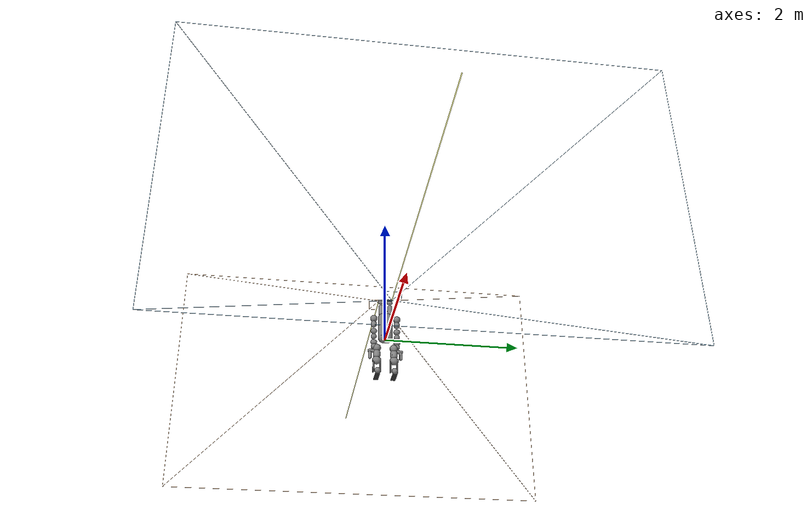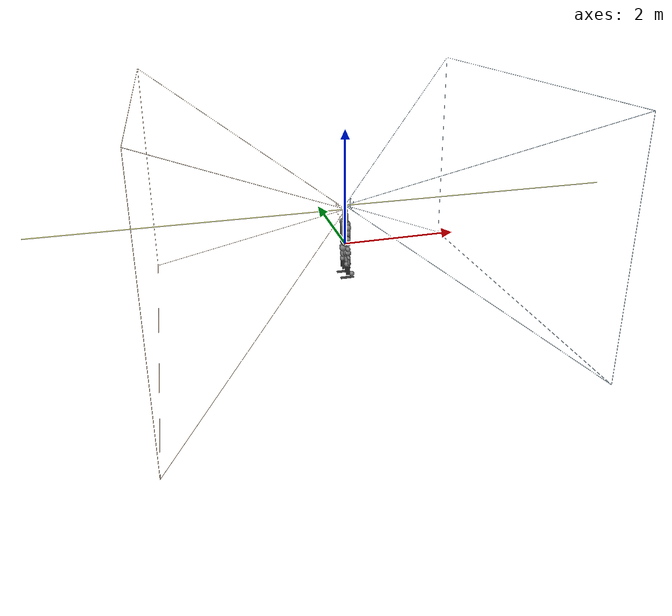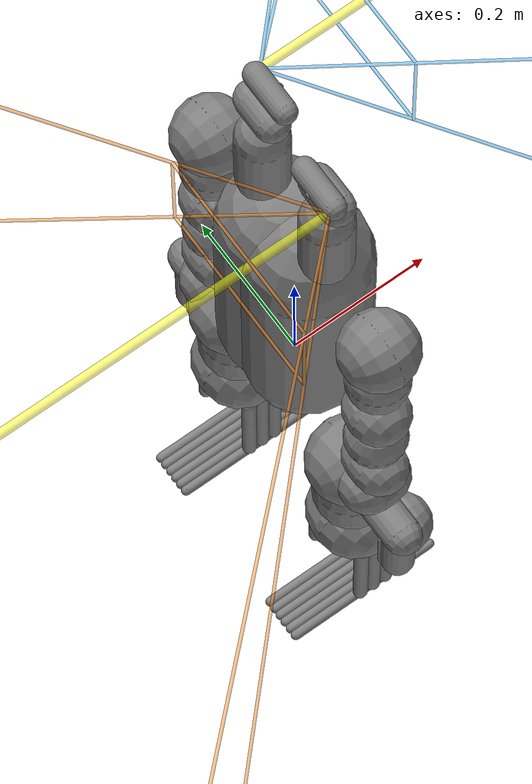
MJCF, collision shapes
<mujoco model="humanoid_v2">
  <compiler angle="radian" meshdir="../../../../asset/create/meshes" />

  <default>
    <default class="humanoid_v2">
      <default class="visual">
        <geom type="mesh" contype="0" conaffinity="0" group="2" material="silver" />
      </default>
      <default class="collision">
        <geom group="3" />
      </default>
    </default>
    <default class="L_main">
      <default class="L_parallel_gripper">
        <default class="L_visual">
          <geom type="mesh" contype="0" conaffinity="0" group="2" material="silver" />
        </default>
        <default class="L_collision">
          <geom group="3" />
        </default>
      </default>
    </default>
    <default class="R_main">
      <default class="R_parallel_gripper">
        <default class="R_visual">
          <geom type="mesh" contype="0" conaffinity="0" group="2" material="silver" />
        </default>
        <default class="R_collision">
          <geom group="3" />
        </default>
      </default>
    </default>
    <default class="cam_main">
      <default class="cam_head_camera_dual">
        <default class="cam_visual">
          <geom type="mesh" contype="0" conaffinity="0" group="2" material="silver" />
        </default>
        <default class="cam_collision">
          <geom group="3" />
        </default>
      </default>
    </default>
  </default>

  <asset>
    <texture type="2d" colorspace="linear" name="L_tag_80_tex" file="../../../../asset/duke_v2/parallel_gripper/meshes/tags/tag_80.png" />
    <texture type="2d" colorspace="linear" name="L_tag_81_tex" file="../../../../asset/duke_v2/parallel_gripper/meshes/tags/tag_81.png" />
    <texture type="2d" colorspace="linear" name="L_tag_82_tex" file="../../../../asset/duke_v2/parallel_gripper/meshes/tags/tag_82.png" />
    <texture type="2d" colorspace="linear" name="L_tag_83_tex" file="../../../../asset/duke_v2/parallel_gripper/meshes/tags/tag_83.png" />
    <texture type="2d" colorspace="linear" name="L_tag_84_tex" file="../../../../asset/duke_v2/parallel_gripper/meshes/tags/tag_84.png" />
    <texture type="2d" colorspace="linear" name="L_tag_85_tex" file="../../../../asset/duke_v2/parallel_gripper/meshes/tags/tag_85.png" />
    <texture type="2d" colorspace="linear" name="L_tag_86_tex" file="../../../../asset/duke_v2/parallel_gripper/meshes/tags/tag_86.png" />
    <texture type="2d" colorspace="linear" name="L_tag_87_tex" file="../../../../asset/duke_v2/parallel_gripper/meshes/tags/tag_87.png" />
    <texture type="2d" colorspace="linear" name="R_tag_90_tex" file="../../../../asset/duke_v2/parallel_gripper/meshes/tags/tag_90.png" />
    <texture type="2d" colorspace="linear" name="R_tag_91_tex" file="../../../../asset/duke_v2/parallel_gripper/meshes/tags/tag_91.png" />
    <texture type="2d" colorspace="linear" name="R_tag_92_tex" file="../../../../asset/duke_v2/parallel_gripper/meshes/tags/tag_92.png" />
    <texture type="2d" colorspace="linear" name="R_tag_93_tex" file="../../../../asset/duke_v2/parallel_gripper/meshes/tags/tag_93.png" />
    <texture type="2d" colorspace="linear" name="R_tag_94_tex" file="../../../../asset/duke_v2/parallel_gripper/meshes/tags/tag_94.png" />
    <texture type="2d" colorspace="linear" name="R_tag_95_tex" file="../../../../asset/duke_v2/parallel_gripper/meshes/tags/tag_95.png" />
    <texture type="2d" colorspace="linear" name="R_tag_96_tex" file="../../../../asset/duke_v2/parallel_gripper/meshes/tags/tag_96.png" />
    <texture type="2d" colorspace="linear" name="R_tag_97_tex" file="../../../../asset/duke_v2/parallel_gripper/meshes/tags/tag_97.png" />
    <material name="silver" rgba="0.75 0.75 0.75 1" />
    <material name="blue" rgba="0 0 0.8 1" />
    <material name="black" rgba="0 0 0 1" />
    <material name="purple" rgba="0.8 0 0.8 1" />
    <material name="light_grey" rgba="0.4 0.4 0.4 1" />
    <material name="dark_grey" rgba="0.3 0.3 0.3 1" />
    <material name="white" />
    <material name="L_silver" rgba="0.75 0.75 0.75 1" />
    <material name="L_base_mat" rgba="0.75 0.75 0.75 1" />
    <material name="L_left_rack_mat" rgba="0.3 0.55 0.85 1" />
    <material name="L_right_rack_mat" rgba="0.65 0.4 0.8 1" />
    <material name="L_tag_80_mat" texture="L_tag_80_tex" specular="0" shininess="0" />
    <material name="L_tag_81_mat" texture="L_tag_81_tex" specular="0" shininess="0" />
    <material name="L_tag_82_mat" texture="L_tag_82_tex" specular="0" shininess="0" />
    <material name="L_tag_83_mat" texture="L_tag_83_tex" specular="0" shininess="0" />
    <material name="L_tag_84_mat" texture="L_tag_84_tex" specular="0" shininess="0" />
    <material name="L_tag_85_mat" texture="L_tag_85_tex" specular="0" shininess="0" />
    <material name="L_tag_86_mat" texture="L_tag_86_tex" specular="0" shininess="0" />
    <material name="L_tag_87_mat" texture="L_tag_87_tex" specular="0" shininess="0" />
    <material name="R_silver" rgba="0.75 0.75 0.75 1" />
    <material name="R_base_mat" rgba="0.75 0.75 0.75 1" />
    <material name="R_left_rack_mat" rgba="0.3 0.55 0.85 1" />
    <material name="R_right_rack_mat" rgba="0.65 0.4 0.8 1" />
    <material name="R_tag_90_mat" texture="R_tag_90_tex" specular="0" shininess="0" />
    <material name="R_tag_91_mat" texture="R_tag_91_tex" specular="0" shininess="0" />
    <material name="R_tag_92_mat" texture="R_tag_92_tex" specular="0" shininess="0" />
    <material name="R_tag_93_mat" texture="R_tag_93_tex" specular="0" shininess="0" />
    <material name="R_tag_94_mat" texture="R_tag_94_tex" specular="0" shininess="0" />
    <material name="R_tag_95_mat" texture="R_tag_95_tex" specular="0" shininess="0" />
    <material name="R_tag_96_mat" texture="R_tag_96_tex" specular="0" shininess="0" />
    <material name="R_tag_97_mat" texture="R_tag_97_tex" specular="0" shininess="0" />
    <material name="cam_silver" rgba="0.75 0.75 0.75 1" />
    <material name="cam_blue" rgba="0 0 0.8 1" />
    <material name="cam_black" rgba="0 0 0 1" />
    <material name="cam_purple" rgba="0.8 0 0.8 1" />
    <material name="cam_light_grey" rgba="0.4 0.4 0.4 1" />
    <material name="cam_dark_grey" rgba="0.3 0.3 0.3 1" />
    <material name="cam_white" />
    <mesh name="base_link" content_type="model/stl" file="base_link.stl" scale="0.001 0.001 0.001" />
    <mesh name="waist_high_res" content_type="model/obj" file="waist.obj" scale="0.001 0.001 0.001" />
    <mesh name="hip_2_high_res" content_type="model/obj" file="hip_2.obj" scale="0.001 0.001 0.001" />
    <mesh name="hip_3_high_res" content_type="model/obj" file="hip_3.obj" scale="0.001 0.001 0.001" />
    <mesh name="knee_high_res" content_type="model/obj" file="knee.obj" scale="0.001 0.001 0.001" />
    <mesh name="shank_high_res" content_type="model/obj" file="shank.obj" scale="0.001 0.001 0.001" />
    <mesh name="ankle_1_high_res" content_type="model/obj" file="ankle_1.obj" scale="0.001 0.001 0.001" />
    <mesh name="ankle_2_high_res" content_type="model/obj" file="ankle_2.obj" scale="0.001 0.001 0.001" />
    <mesh name="shoulder_2_high_res" content_type="model/obj" file="shoulder_2.obj" scale="0.001 0.001 0.001" />
    <mesh name="shoulder_3" content_type="model/obj" file="shoulder_3.obj" scale="0.001 0.001 0.001" />
    <mesh name="elbow_high_res" content_type="model/obj" file="elbow.obj" scale="0.001 0.001 0.001" />
    <mesh name="wrist_1_high_res_mirrorx" content_type="model/obj" file="wrist_1.obj" scale="-0.001 0.001 0.001" />
    <mesh name="wrist_1_high_res" content_type="model/obj" file="wrist_1.obj" scale="0.001 0.001 0.001" />
    <mesh name="wrist_2_high_res" content_type="model/obj" file="wrist_2.obj" scale="0.001 0.001 0.001" />
    <mesh name="wrist_3_new_high_res_mirrorx" content_type="model/obj" file="wrist_3_new.obj" scale="-0.001 0.001 0.001" />
    <mesh name="wrist_3_new_high_res" content_type="model/obj" file="wrist_3_new.obj" scale="0.001 0.001 0.001" />
    <mesh name="end_effector_attachment_new_high_res" content_type="model/obj" file="end_effector_attachment_new.obj" scale="0.001 0.001 0.001" />
    <mesh name="L_base" content_type="model/obj" file="../../duke_v2/parallel_gripper/meshes/base.obj" scale="0.001 0.001 0.001" />
    <mesh name="L_left_rack" content_type="model/obj" file="../../duke_v2/parallel_gripper/meshes/left_rack.obj" scale="0.001 0.001 0.001" />
    <mesh name="L_right_rack" content_type="model/obj" file="../../duke_v2/parallel_gripper/meshes/right_rack.obj" scale="0.001 0.001 0.001" />
    <mesh name="L_tag_80_quad" content_type="model/obj" file="../../duke_v2/parallel_gripper/meshes/tags/tag_80.obj" inertia="shell" scale="0.001 0.001 0.001" />
    <mesh name="L_tag_81_quad" content_type="model/obj" file="../../duke_v2/parallel_gripper/meshes/tags/tag_81.obj" inertia="shell" scale="0.001 0.001 0.001" />
    <mesh name="L_tag_82_quad" content_type="model/obj" file="../../duke_v2/parallel_gripper/meshes/tags/tag_82.obj" inertia="shell" scale="0.001 0.001 0.001" />
    <mesh name="L_tag_83_quad" content_type="model/obj" file="../../duke_v2/parallel_gripper/meshes/tags/tag_83.obj" inertia="shell" scale="0.001 0.001 0.001" />
    <mesh name="L_tag_84_quad" content_type="model/obj" file="../../duke_v2/parallel_gripper/meshes/tags/tag_84.obj" inertia="shell" scale="0.001 0.001 0.001" />
    <mesh name="L_tag_85_quad" content_type="model/obj" file="../../duke_v2/parallel_gripper/meshes/tags/tag_85.obj" inertia="shell" scale="0.001 0.001 0.001" />
    <mesh name="L_tag_86_quad" content_type="model/obj" file="../../duke_v2/parallel_gripper/meshes/tags/tag_86.obj" inertia="shell" scale="0.001 0.001 0.001" />
    <mesh name="L_tag_87_quad" content_type="model/obj" file="../../duke_v2/parallel_gripper/meshes/tags/tag_87.obj" inertia="shell" scale="0.001 0.001 0.001" />
    <mesh name="R_base" file="../../duke_v2/parallel_gripper/meshes/base.obj" scale="0.001 0.001 0.001" />
    <mesh name="R_left_rack" content_type="model/obj" file="../../duke_v2/parallel_gripper/meshes/left_rack.obj" scale="0.001 0.001 0.001" />
    <mesh name="R_right_rack" content_type="model/obj" file="../../duke_v2/parallel_gripper/meshes/right_rack.obj" scale="0.001 0.001 0.001" />
    <mesh name="R_tag_90_quad" content_type="model/obj" file="../../duke_v2/parallel_gripper/meshes/tags/tag_90.obj" inertia="shell" scale="0.001 0.001 0.001" />
    <mesh name="R_tag_91_quad" content_type="model/obj" file="../../duke_v2/parallel_gripper/meshes/tags/tag_91.obj" inertia="shell" scale="0.001 0.001 0.001" />
    <mesh name="R_tag_92_quad" content_type="model/obj" file="../../duke_v2/parallel_gripper/meshes/tags/tag_92.obj" inertia="shell" scale="0.001 0.001 0.001" />
    <mesh name="R_tag_93_quad" content_type="model/obj" file="../../duke_v2/parallel_gripper/meshes/tags/tag_93.obj" inertia="shell" scale="0.001 0.001 0.001" />
    <mesh name="R_tag_94_quad" content_type="model/obj" file="../../duke_v2/parallel_gripper/meshes/tags/tag_94.obj" inertia="shell" scale="0.001 0.001 0.001" />
    <mesh name="R_tag_95_quad" content_type="model/obj" file="../../duke_v2/parallel_gripper/meshes/tags/tag_95.obj" inertia="shell" scale="0.001 0.001 0.001" />
    <mesh name="R_tag_96_quad" content_type="model/obj" file="../../duke_v2/parallel_gripper/meshes/tags/tag_96.obj" inertia="shell" scale="0.001 0.001 0.001" />
    <mesh name="R_tag_97_quad" content_type="model/obj" file="../../duke_v2/parallel_gripper/meshes/tags/tag_97.obj" inertia="shell" scale="0.001 0.001 0.001" />
    <mesh name="cam_base_left" content_type="model/obj" file="../../duke_v2/head_cam/meshes/links/base_left.obj" scale="0.001 0.001 0.001" />
    <mesh name="cam_yaw_left" content_type="model/obj" file="../../duke_v2/head_cam/meshes/links/yaw_left.obj" scale="0.001 0.001 0.001" />
    <mesh name="cam_pitch_left" content_type="model/obj" file="../../duke_v2/head_cam/meshes/links/pitch_left.obj" scale="0.001 0.001 0.001" />
  </asset>

  <worldbody>
    <body name="base_link" childclass="humanoid_v2">
      <inertial pos="-0.00741636 4.16161e-05 0.186843" mass="9.30291" fullinertia="0.188902343 0.173948988 0.0349290694 -7.14043436e-06 -0.00480258537 4.92610916e-05" />
      <joint name="floating_base_joint" type="free" />
      <geom name="base_link_visual" class="visual" material="dark_grey" mesh="base_link" />
      <geom name="base_link_collision0" class="collision" size="0.0848538 0.155146" pos="0 -0.0249986 0.2" type="capsule" />
      <geom name="base_link_collision1" class="collision" size="0.0848538 0.155146" pos="0 0.0249986 0.2" type="capsule" />
      <site name="imu_site" pos="0 0 0" />
      <camera name="tracking" pos="1.5 -1.5 1" quat="0.780227 0.494771 0.204941 0.323181" mode="trackcom" />
      <light pos="0 0 2" dir="0 0 -1" mode="trackcom" />
      <body name="waist" pos="0 0 -0.0361">
        <inertial pos="-0.00238207 4.63475e-07 -0.0704721" mass="2.31937" fullinertia="0.00556380441 0.00376271051 0.00531598508 -9.54370724e-07 6.73797608e-05 6.72639247e-08" />
        <joint name="waist_joint" pos="0 0 0" axis="0 0 1" range="-1.5708 1.5708" frictionloss="0.2" />
        <geom name="waist_visual" class="visual" material="dark_grey" mesh="waist_high_res" />
        <body name="hip_2_L" pos="0 0.059946 -0.081628" quat="0.793353 0.608761 0 0">
          <inertial pos="0.000349087 -2.18694e-05 -0.061261" mass="1.2527" fullinertia="0.00184592008 0.00192887694 0.00139448298 -4.65310842e-07 7.53130928e-05 -3.41952255e-08" />
          <joint name="left_hip_1_joint" pos="0 0 0" axis="0 0 1" range="-1.8326 1.8326" frictionloss="0.2" />
          <geom name="hip_2_L_visual" class="visual" material="light_grey" mesh="hip_2_high_res" />
          <geom name="hip_2_L_collision" class="collision" size="0.06 0.005" pos="0.0006 0 -0.069" quat="0.701057 0.092296 -0.701057 -0.092296" type="capsule" />
          <body name="hip_3_L" pos="0.0287 0 -0.0691" quat="0.701057 0.092296 -0.701057 -0.092296">
            <inertial pos="2.07731e-05 -0.0770614 0.0307231" mass="1.29734" fullinertia="0.00271564981 0.00175400621 0.00229136398 -1.73200232e-07 2.51456817e-07 -4.24077402e-05" />
            <joint name="left_hip_2_joint" pos="0 0 0" axis="0 0 1" range="-1.8326 0.523599" frictionloss="0.5" />
            <geom name="hip_3_L_visual" class="visual" material="dark_grey" mesh="hip_3_high_res" />
            <geom name="hip_3_L_collision" class="collision" size="0.053 0.021" pos="0 -0.0945 0.0287" quat="0.707107 -0.707107 0 0" type="capsule" />
            <body name="knee_L" pos="0 -0.1156 0.0287" quat="0.707107 -0.707107 0 0">
              <inertial pos="0.0014826 8.41853e-05 -0.0736603" mass="1.84214" fullinertia="0.00341717719 0.00264701475 0.00191177806 -3.18944229e-06 6.43797512e-05 -3.96379965e-06" />
              <joint name="left_hip_3_joint" pos="0 0 0" axis="0 0 1" range="-1.5708 1.5708" frictionloss="0.2" />
              <geom name="knee_L_visual" class="visual" material="light_grey" mesh="knee_high_res" />
              <geom name="knee_L_collision" class="collision" size="0.06 0.005" pos="-0.00225 0 -0.0795" quat="0.5 -0.5 -0.5 0.5" type="capsule" />
              <body name="shank_L" pos="0.0255 0 -0.0795" quat="0.5 -0.5 -0.5 0.5">
                <inertial pos="8.59033e-07 0.0943751 0.0229906" mass="0.753289" fullinertia="0.00599117 0.00154572065 0.00486076935 -9.33663573e-08 -4.88217728e-10 -1.73350428e-05" />
                <joint name="left_knee_joint" pos="0 0 0" axis="0 0 1" range="-2.26893 2.26893" frictionloss="0.5" />
                <geom name="shank_L_visual" class="visual" material="dark_grey" mesh="shank_high_res" />
                <geom name="shank_L_collision0" class="collision" size="0.01 0.08" pos="-0.02 0.1 -0.025" quat="0.707107 -0.707107 0 0" type="capsule" />
                <geom name="shank_L_collision1" class="collision" size="0.01 0.08" pos="0 0.1 -0.025" quat="0.707107 -0.707107 0 0" type="capsule" />
                <geom name="shank_L_collision2" class="collision" size="0.01 0.08" pos="0.02 0.1 -0.025" quat="0.707107 -0.707107 0 0" type="capsule" />
                <geom name="shank_L_collision3" class="collision" size="0.01 0.08" pos="-0.02 0.1 0.075" quat="0.707107 -0.707107 0 0" type="capsule" />
                <geom name="shank_L_collision4" class="collision" size="0.01 0.08" pos="0 0.1 0.075" quat="0.707107 -0.707107 0 0" type="capsule" />
                <geom name="shank_L_collision5" class="collision" size="0.01 0.08" pos="0.02 0.1 0.075" quat="0.707107 -0.707107 0 0" type="capsule" />
                <body name="ankle_1_L" pos="0 0.195 0" quat="0 0 1 0">
                  <inertial pos="-0.0305888 -1.59279e-05 -0.025774" mass="1.80186" fullinertia="0.00144542199 0.00421361113 0.00443806688 6.81624234e-07 2.33372162e-06 -5.41208275e-07" />
                  <joint name="left_ankle_1_joint" pos="0 0 0" axis="0 0 1" range="-0.872665 0.872665" frictionloss="0.2" />
                  <geom name="ankle_1_L_visual" class="visual" material="light_grey" mesh="ankle_1_high_res" />
                  <geom name="ankle_1_L_collision" class="collision" size="0.044 0.0005" pos="-0.08275 0 -0.0255" quat="0.707107 0 0.707107 0" type="capsule" />
                  <body name="foot_L" pos="-0.1 0 -0.0255" quat="0.5 -0.5 0.5 -0.5">
                    <inertial pos="-0.0374774 8.96073e-10 0.0957522" mass="0.506071" fullinertia="0.00341516545 0.00361595 0.000615154548 0 0.00011486913 0" />
                    <joint name="left_ankle_2_joint" pos="0 0 0" axis="0 0 1" range="-1.0472 1.0472" frictionloss="0.5" />
                    <geom name="foot_L_visual" class="visual" mesh="ankle_2_high_res" />
                    <geom name="foot_L_collision0" class="collision" size="0.007 0.1105" pos="-0.061 -0.029 0.1" type="capsule" />
                    <geom name="foot_L_collision1" class="collision" size="0.007 0.1105" pos="-0.061 -0.0174 0.1" type="capsule" />
                    <geom name="foot_L_collision2" class="collision" size="0.007 0.1105" pos="-0.061 -0.0058 0.1" type="capsule" />
                    <geom name="foot_L_collision3" class="collision" size="0.007 0.1105" pos="-0.061 0.0058 0.1" type="capsule" />
                    <geom name="foot_L_collision4" class="collision" size="0.007 0.1105" pos="-0.061 0.0174 0.1" type="capsule" />
                    <geom name="foot_L_collision5" class="collision" size="0.007 0.1105" pos="-0.061 0.029 0.1" type="capsule" />
                    <site name="foot_L_contact" pos="-0.061 0 0.1" />
                  </body>
                </body>
              </body>
            </body>
          </body>
        </body>
        <body name="hip_2_R" pos="0 -0.059946 -0.081628" quat="0.793353 -0.608761 0 0">
          <inertial pos="0.000349087 -2.18694e-05 -0.061261" mass="1.2527" fullinertia="0.00184592008 0.00192887694 0.00139448298 -4.65310842e-07 7.53130928e-05 -3.41952255e-08" />
          <joint name="right_hip_1_joint" pos="0 0 0" axis="0 0 1" range="-1.8326 1.8326" frictionloss="0.2" />
          <geom name="hip_2_R_visual" class="visual" material="light_grey" mesh="hip_2_high_res" />
          <geom name="hip_2_R_collision" class="collision" size="0.06 0.005" pos="0.0006 0 -0.069" quat="0.701057 0.092296 -0.701057 -0.092296" type="capsule" />
          <body name="hip_3_R" pos="0.0287 0 -0.0691" quat="0.092296 0.701057 -0.092296 -0.701057">
            <inertial pos="2.07731e-05 -0.0770614 0.0307231" mass="1.29734" fullinertia="0.00271564981 0.00175400621 0.00229136398 -1.73200232e-07 2.51456817e-07 -4.24077402e-05" />
            <joint name="right_hip_2_joint" pos="0 0 0" axis="0 0 1" range="-0.523599 1.8326" frictionloss="0.5" />
            <geom name="hip_3_R_visual" class="visual" material="dark_grey" mesh="hip_3_high_res" />
            <geom name="hip_3_R_collision" class="collision" size="0.053 0.021" pos="0 -0.0945 0.0287" quat="0.707107 -0.707107 0 0" type="capsule" />
            <body name="knee_R" pos="0 -0.1156 0.0287" quat="0 0 0.707107 0.707107">
              <inertial pos="0.0014826 8.41853e-05 -0.0736603" mass="1.84214" fullinertia="0.00341717719 0.00264701475 0.00191177806 -3.18944229e-06 6.43797512e-05 -3.96379965e-06" />
              <joint name="right_hip_3_joint" pos="0 0 0" axis="0 0 1" range="-1.5708 1.5708" frictionloss="0.2" />
              <geom name="knee_R_visual" class="visual" material="light_grey" mesh="knee_high_res" />
              <geom name="knee_R_collision" class="collision" size="0.06 0.005" pos="-0.00225 0 -0.0795" quat="0.5 -0.5 -0.5 0.5" type="capsule" />
              <body name="shank_R" pos="0.0255 0 -0.0795" quat="0.5 -0.5 -0.5 0.5">
                <inertial pos="8.59033e-07 0.0943751 0.0229906" mass="0.753289" fullinertia="0.00599117 0.00154572065 0.00486076935 -9.33663573e-08 -4.88217728e-10 -1.73350428e-05" />
                <joint name="right_knee_joint" pos="0 0 0" axis="0 0 1" range="-2.26893 2.26893" frictionloss="0.5" />
                <geom name="shank_R_visual" class="visual" material="dark_grey" mesh="shank_high_res" />
                <geom name="shank_R_collision0" class="collision" size="0.01 0.08" pos="-0.02 0.1 -0.025" quat="0.707107 -0.707107 0 0" type="capsule" />
                <geom name="shank_R_collision1" class="collision" size="0.01 0.08" pos="0 0.1 -0.025" quat="0.707107 -0.707107 0 0" type="capsule" />
                <geom name="shank_R_collision2" class="collision" size="0.01 0.08" pos="0.02 0.1 -0.025" quat="0.707107 -0.707107 0 0" type="capsule" />
                <geom name="shank_R_collision3" class="collision" size="0.01 0.08" pos="-0.02 0.1 0.075" quat="0.707107 -0.707107 0 0" type="capsule" />
                <geom name="shank_R_collision4" class="collision" size="0.01 0.08" pos="0 0.1 0.075" quat="0.707107 -0.707107 0 0" type="capsule" />
                <geom name="shank_R_collision5" class="collision" size="0.01 0.08" pos="0.02 0.1 0.075" quat="0.707107 -0.707107 0 0" type="capsule" />
                <body name="ankle_1_R" pos="0 0.195 0" quat="0 -1 0 0">
                  <inertial pos="-0.0305888 -1.59279e-05 -0.025774" mass="1.80186" fullinertia="0.00144542199 0.00421361113 0.00443806688 6.81624234e-07 2.33372162e-06 -5.41208275e-07" />
                  <joint name="right_ankle_1_joint" pos="0 0 0" axis="0 0 1" range="-0.872665 0.872665" frictionloss="0.2" />
                  <geom name="ankle_1_R_visual" class="visual" material="light_grey" mesh="ankle_1_high_res" />
                  <geom name="ankle_1_R_collision" class="collision" size="0.044 0.0005" pos="-0.08275 0 -0.0255" quat="0.707107 0 0.707107 0" type="capsule" />
                  <body name="foot_R" pos="-0.1 0 -0.0255" quat="0.5 0.5 0.5 0.5">
                    <inertial pos="-0.0374774 8.96073e-10 0.0957522" mass="0.506071" fullinertia="0.00341516545 0.00361595 0.000615154548 0 0.00011486913 0" />
                    <joint name="right_ankle_2_joint" pos="0 0 0" axis="0 0 1" range="-1.0472 1.0472" frictionloss="0.5" />
                    <geom name="foot_R_visual" class="visual" mesh="ankle_2_high_res" />
                    <geom name="foot_R_collision0" class="collision" size="0.007 0.1105" pos="-0.061 -0.029 0.1" type="capsule" />
                    <geom name="foot_R_collision1" class="collision" size="0.007 0.1105" pos="-0.061 -0.0174 0.1" type="capsule" />
                    <geom name="foot_R_collision2" class="collision" size="0.007 0.1105" pos="-0.061 -0.0058 0.1" type="capsule" />
                    <geom name="foot_R_collision3" class="collision" size="0.007 0.1105" pos="-0.061 0.0058 0.1" type="capsule" />
                    <geom name="foot_R_collision4" class="collision" size="0.007 0.1105" pos="-0.061 0.0174 0.1" type="capsule" />
                    <geom name="foot_R_collision5" class="collision" size="0.007 0.1105" pos="-0.061 0.029 0.1" type="capsule" />
                    <site name="foot_R_contact" pos="-0.061 0 0.1" />
                  </body>
                </body>
              </body>
            </body>
          </body>
        </body>
      </body>
      <body name="shoulder_2_L" pos="0 0.083 0.3475" quat="0.707107 0.707107 0 0">
        <inertial pos="0.000787068 -5.71455e-07 -0.0730081" mass="0.903097" fullinertia="0.00152619735 0.00146696 0.000562176654 -5.02845204e-09 7.97485475e-05 -1.93163043e-08" />
        <joint name="left_shoulder_1_joint" pos="0 0 0" axis="0 0 1" range="-3.14159 3.14159" frictionloss="0.5" />
        <geom name="shoulder_2_L_visual" class="visual" material="dark_grey" mesh="shoulder_2_high_res" />
        <geom name="shoulder_2_L_collision" class="collision" size="0.053 5e-05" pos="0 0 -0.09" quat="0.707107 0 0.707107 0" type="capsule" />
        <body name="shoulder_3_L" pos="0.02475 0 -0.09" quat="0.707107 0 -0.707107 0">
          <inertial pos="0.000428244 -0.0657202 0.0269038" mass="0.716054" fullinertia="0.00122915762 0.000675978551 0.00100387883 2.15979073e-06 -6.08468263e-06 1.271635e-06" />
          <joint name="left_shoulder_2_joint" pos="0 0 0" axis="0 0 1" range="-3.14159 0.523599" frictionloss="0.2" />
          <geom name="shoulder_3_L_visual" class="visual" material="light_grey" mesh="shoulder_3" />
          <geom name="shoulder_3_L_collision" class="collision" size="0.042 0.01" pos="0 -0.093 0.02475" quat="0.707107 0.707107 0 0" type="capsule" />
          <body name="elbow_L" pos="0 -0.096 0.02475" quat="0 0 0.707107 0.707107">
            <inertial pos="0.00165016 0.0024442 -0.0943709" mass="0.649565" fullinertia="0.00106570836 0.000921032031 0.000389049609 2.5382679e-05 6.31409986e-05 -5.68059363e-05" />
            <joint name="left_shoulder_3_joint" pos="0 0 0" axis="0 0 1" range="-3.14159 3.14159" frictionloss="0.1" />
            <geom name="elbow_L_visual" class="visual" material="dark_grey" mesh="elbow_high_res" />
            <geom name="elbow_L_collision" class="collision" size="0.042 0.005" pos="0 0 -0.111" quat="0.707107 0 0.707107 0" type="capsule" />
            <body name="wrist_1_L" pos="0 0 -0.111" quat="0.5 0.5 -0.5 -0.5">
              <inertial pos="-0.000559436672 -0.0634461858 0.00835396095" mass="0.835813" fullinertia="0.00169851833 0.00104821236 0.00125376607 6.25617072e-07 1.75681996e-05 -0.000156158787" />
              <joint name="left_elbow_joint" pos="0 0 0" axis="0 0 1" range="-2.18166 2.18166" frictionloss="0.1" />
              <geom name="wrist_1_L_visual" class="visual" material="light_grey" mesh="wrist_1_high_res_mirrorx" />
              <geom name="wrist_1_L_collision" class="collision" size="0.042 5e-05" pos="0 -0.0885 0" quat="0.707107 0.707107 0 0" type="capsule" />
              <body name="wrist_2_L" pos="0 -0.096 0" quat="0.5 -0.5 -0.5 -0.5">
                <inertial pos="-0.0102108133 -0.000607703537 -0.0774459463" mass="0.465374" fullinertia="0.00039132183 0.00043617157 0.000228201871 -6.98484831e-06 -1.04029317e-05 9.96072037e-06" />
                <joint name="left_wrist_1_joint" pos="0 0 0" axis="0 0 1" range="-3.14159 3.14159" frictionloss="0.1" ref="-1.5707963267948966" />
                <geom name="wrist_2_L_visual" class="visual" material="white" mesh="wrist_2_high_res" />
                <geom name="wrist_2_L_collision" class="collision" size="0.038 0.01" pos="0 0 -0.0855" quat="0.707107 0 0.707107 0" type="capsule" />
                <body name="wrist_3_L" pos="0 0 -0.0855" quat="0 0 0 1">
                  <inertial pos="-0.00714659644 -0.0085308157 -0.0468929818" mass="0.34335" fullinertia="0.000387562053 0.000417938561 0.000174615547 1.75308764e-05 9.98431632e-05 -4.45319185e-05" />
                  <joint name="left_wrist_2_joint" pos="0 0 0" axis="1 0 0" range="-1.6057 1.6057" frictionloss="0.05" />
                  <geom name="wrist_3_L_visual" class="visual" material="light_grey" mesh="wrist_3_new_high_res_mirrorx" />
                  <geom name="wrist_3_L_collision" class="collision" size="0.04 0.01" pos="0 0 -0.07" quat="0.707107 0.707107 0 0" type="capsule" />
                  <body name="end_effector_L" pos="0 0 -0.064" quat="0.5 0.5 0.5 -0.5">
                    <inertial pos="0.01513 -2.418e-08 -0.01529" quat="-3.04069e-06 0.992481 -3.74997e-07 0.122399" mass="0.17299" diaginertia="5.85506e-05 0.00014 0.000145109" />
                    <joint name="left_wrist_3_joint" pos="0 0 0" axis="0 0 1" range="-1.5708 1.5708" frictionloss="0.05" />
                    <geom name="end_effector_L_visual" class="visual" material="white" mesh="end_effector_attachment_new_high_res" />
                    <site name="end_effector_L_site" pos="0.169 0.00096 0" />
                    <body name="L_base" childclass="L_parallel_gripper" pos="0.079 -0.006 0.01">
                      <inertial pos="0.000733468 0.0119563 -0.00964551" quat="0.725257 0.023573 0.00705184 -0.688038" mass="0.171609" diaginertia="4.99918e-05 0.000207737 0.000223325" />
                      <geom name="L_base_visual" class="L_visual" material="L_base_mat" mesh="L_base" />
                      <geom name="L_base_collision" class="L_collision" size="0.026 0.064" pos="-0.0017 0.0075 -0.01" quat="0.707107 -0.707107 0 0" type="capsule" />
                      <geom name="L_tag_84" type="mesh" contype="0" conaffinity="0" group="2" material="L_tag_84_mat" mesh="L_tag_84_quad" />
                      <geom name="L_tag_85" type="mesh" contype="0" conaffinity="0" group="2" material="L_tag_85_mat" mesh="L_tag_85_quad" />
                      <geom name="L_tag_86" type="mesh" contype="0" conaffinity="0" group="2" material="L_tag_86_mat" mesh="L_tag_86_quad" />
                      <geom name="L_tag_87" type="mesh" contype="0" conaffinity="0" group="2" material="L_tag_87_mat" mesh="L_tag_87_quad" />
                      <body name="L_left_rack">
                        <inertial pos="0.0462025 -0.0220002 -0.00385734" quat="-0.0935321 0.426555 0.899548 0.0108181" mass="0.0743656" diaginertia="4.74015e-05 0.00012138 0.000153873" />
                        <geom name="L_left_rack_visual" class="L_visual" material="L_left_rack_mat" mesh="L_left_rack" />
                        <geom name="L_left_rack_collision0" class="L_collision" size="0.005 0.0358" pos="0.0808 -0.033 -0.0249869" quat="0.707107 0 0.707107 0" type="capsule" conaffinity="0" friction="2" solref="0.005" />
                        <geom name="L_left_rack_collision1" class="L_collision" size="0.005 0.0358" pos="0.0808 -0.033 -0.0149956" quat="0.707107 0 0.707107 0" type="capsule" conaffinity="0" friction="2" solref="0.005" />
                        <geom name="L_left_rack_collision2" class="L_collision" size="0.005 0.0358" pos="0.0808 -0.033 -0.00500436" quat="0.707107 0 0.707107 0" type="capsule" conaffinity="0" friction="2" solref="0.005" />
                        <geom name="L_left_rack_collision3" class="L_collision" size="0.005 0.0358" pos="0.0808 -0.033 0.00498693" quat="0.707107 0 0.707107 0" type="capsule" conaffinity="0" friction="2" solref="0.005" />
                        <geom name="L_left_rack_collision4" class="L_collision" size="0.021 0.0225" pos="0.0675 -0.049 -0.01" quat="0.707107 0 0.707107 0" type="capsule" conaffinity="0" friction="2" solref="0.005" />
                        <geom name="L_left_rack_ikproxy" class="L_collision" size="0.0226 0.0458" pos="0.0608 -0.0486 -0.01" quat="0.707107 0 0.707107 0" type="capsule" contype="0" conaffinity="0" group="5" friction="2" solref="0.005" />
                        <geom name="L_tag_80" type="mesh" contype="0" conaffinity="0" group="2" material="L_tag_80_mat" mesh="L_tag_80_quad" />
                        <geom name="L_tag_81" type="mesh" contype="0" conaffinity="0" group="2" material="L_tag_81_mat" mesh="L_tag_81_quad" />
                      </body>
                      <body name="L_right_rack">
                        <inertial pos="0.0461618 0.0359459 -0.0161427" quat="-0.0107055 0.899312 0.427027 0.0936506" mass="0.0743656" diaginertia="4.73679e-05 0.000121196 0.000153672" />
                        <geom name="L_right_rack_visual" class="L_visual" material="L_right_rack_mat" mesh="L_right_rack" />
                        <geom name="L_right_rack_collision0" class="L_collision" size="0.005 0.0358" pos="0.0808 0.0469 -0.0249869" quat="0.707107 0 0.707107 0" type="capsule" conaffinity="0" friction="2" solref="0.005" />
                        <geom name="L_right_rack_collision1" class="L_collision" size="0.005 0.0358" pos="0.0808 0.0469 -0.0149956" quat="0.707107 0 0.707107 0" type="capsule" conaffinity="0" friction="2" solref="0.005" />
                        <geom name="L_right_rack_collision2" class="L_collision" size="0.005 0.0358" pos="0.0808 0.0469 -0.00500436" quat="0.707107 0 0.707107 0" type="capsule" conaffinity="0" friction="2" solref="0.005" />
                        <geom name="L_right_rack_collision3" class="L_collision" size="0.005 0.0358" pos="0.0808 0.0469 0.00498693" quat="0.707107 0 0.707107 0" type="capsule" conaffinity="0" friction="2" solref="0.005" />
                        <geom name="L_right_rack_collision4" class="L_collision" size="0.021 0.0225" pos="0.0675 0.0629 -0.01" quat="0.707107 0 0.707107 0" type="capsule" conaffinity="0" friction="2" solref="0.005" />
                        <geom name="L_right_rack_ikproxy" class="L_collision" size="0.0226 0.0458" pos="0.0608 0.0625 -0.01" quat="0.707107 0 0.707107 0" type="capsule" contype="0" conaffinity="0" group="5" friction="2" solref="0.005" />
                        <geom name="L_tag_82" type="mesh" contype="0" conaffinity="0" group="2" material="L_tag_82_mat" mesh="L_tag_82_quad" />
                        <geom name="L_tag_83" type="mesh" contype="0" conaffinity="0" group="2" material="L_tag_83_mat" mesh="L_tag_83_quad" />
                      </body>
                    </body>
                  </body>
                </body>
              </body>
            </body>
          </body>
        </body>
      </body>
      <body name="shoulder_2_R" pos="0 -0.083 0.3475" quat="0.707107 -0.707107 0 0">
        <inertial pos="0.000787068 -5.71455e-07 -0.0730081" mass="0.903097" fullinertia="0.00152619735 0.00146696 0.000562176654 -5.02845204e-09 7.97485475e-05 -1.93163043e-08" />
        <joint name="right_shoulder_1_joint" pos="0 0 0" axis="0 0 1" range="-3.14159 3.14159" frictionloss="0.5" />
        <geom name="shoulder_2_R_visual" class="visual" material="dark_grey" mesh="shoulder_2_high_res" />
        <geom name="shoulder_2_R_collision" class="collision" size="0.053 5e-05" pos="0 0 -0.09" quat="0.707107 0 0.707107 0" type="capsule" />
        <body name="shoulder_3_R" pos="0.02475 0 -0.09" quat="0 0.707107 0 -0.707107">
          <inertial pos="0.000428244 -0.0657202 0.0269038" mass="0.716054" fullinertia="0.00122915762 0.000675978551 0.00100387883 2.15979073e-06 -6.08468263e-06 1.271635e-06" />
          <joint name="right_shoulder_2_joint" pos="0 0 0" axis="0 0 1" range="-0.523599 3.14159" frictionloss="0.2" />
          <geom name="shoulder_3_R_visual" class="visual" material="light_grey" mesh="shoulder_3" />
          <geom name="shoulder_3_R_collision" class="collision" size="0.042 0.01" pos="0 -0.093 0.02475" quat="0.707107 0.707107 0 0" type="capsule" />
          <body name="elbow_R" pos="0 -0.096 0.02475" quat="0.707107 -0.707107 0 0">
            <inertial pos="0.00165016 0.0024442 -0.0943709" mass="0.649565" fullinertia="0.00106570836 0.000921032031 0.000389049609 2.5382679e-05 6.31409986e-05 -5.68059363e-05" />
            <joint name="right_shoulder_3_joint" pos="0 0 0" axis="0 0 1" range="-3.14159 3.14159" frictionloss="0.1" />
            <geom name="elbow_R_visual" class="visual" material="dark_grey" mesh="elbow_high_res" />
            <geom name="elbow_R_collision" class="collision" size="0.042 0.005" pos="0 0 -0.111" quat="0.707107 0 0.707107 0" type="capsule" />
            <body name="wrist_1_R" pos="0 0 -0.111" quat="0.5 0.5 -0.5 -0.5">
              <inertial pos="-0.00089831702 -0.0634461858 0.00835396095" mass="0.835813" fullinertia="0.00169851833 0.00104779947 0.00125335318 -1.72892584e-06 -1.57058258e-06 -0.000156158787" />
              <joint name="right_elbow_joint" pos="0 0 0" axis="0 0 1" range="-2.18166 2.18166" frictionloss="0.1" />
              <geom name="wrist_1_R_visual" class="visual" material="light_grey" mesh="wrist_1_high_res" />
              <geom name="wrist_1_R_collision" class="collision" size="0.042 5e-05" pos="0 -0.0885 0" quat="0.707107 0.707107 0 0" type="capsule" />
              <body name="wrist_2_R" pos="0 -0.096 0" quat="0.5 -0.5 -0.5 -0.5">
                <inertial pos="-0.0102108133 -0.000607703537 -0.0774459463" mass="0.465374" fullinertia="0.00039132183 0.00043617157 0.000228201871 -6.98484831e-06 -1.04029317e-05 9.96072037e-06" />
                <joint name="right_wrist_1_joint" pos="0 0 0" axis="0 0 1" range="-3.14159 3.14159" frictionloss="0.1" ref="1.5707963267948966" />
                <geom name="wrist_2_R_visual" class="visual" material="white" mesh="wrist_2_high_res" />
                <geom name="wrist_2_R_collision" class="collision" size="0.038 0.01" pos="0 0 -0.0855" quat="0.707107 0 0.707107 0" type="capsule" />
                <body name="wrist_3_R" pos="0 0 -0.0855">
                  <inertial pos="0.00715340356 -0.0085308157 -0.0468929818" mass="0.34335" fullinertia="0.000387562053 0.000417905138 0.000174582125 -1.74932673e-05 -0.000100171181 -4.45319186e-05" />
                  <joint name="right_wrist_2_joint" pos="0 0 0" axis="-1 0 0" range="-1.6057 1.6057" frictionloss="0.05" />
                  <geom name="wrist_3_R_visual" class="visual" material="light_grey" mesh="wrist_3_new_high_res" />
                  <geom name="wrist_3_R_collision" class="collision" size="0.04 0.01" pos="0 0 -0.07" quat="0.707107 0.707107 0 0" type="capsule" />
                  <body name="end_effector_R" pos="0 0 -0.064" quat="0.5 0.5 0.5 -0.5">
                    <inertial pos="0.01513 -2.418e-08 -0.01529" quat="-3.04069e-06 0.992481 -3.74997e-07 0.122399" mass="0.17299" diaginertia="5.85506e-05 0.00014 0.000145109" />
                    <joint name="right_wrist_3_joint" pos="0 0 0" axis="0 0 1" range="-1.5708 1.5708" frictionloss="0.05" />
                    <geom name="end_effector_R_visual" class="visual" material="white" mesh="end_effector_attachment_new_high_res" />
                    <site name="end_effector_R_site" pos="0.169 0.00096 0" />
                    <body name="R_base" childclass="R_parallel_gripper" pos="0.079 -0.006 0.01">
                      <inertial pos="0.000733468 0.0119563 -0.00964551" quat="0.725257 0.023573 0.00705184 -0.688038" mass="0.171609" diaginertia="4.99918e-05 0.000207737 0.000223325" />
                      <geom name="R_base_visual" class="R_visual" material="R_base_mat" mesh="R_base" />
                      <geom name="R_base_collision" class="R_collision" size="0.026 0.064" pos="-0.0017 0.0075 -0.01" quat="0.707107 -0.707107 0 0" type="capsule" />
                      <geom name="R_tag_94" type="mesh" contype="0" conaffinity="0" group="2" material="R_tag_94_mat" mesh="R_tag_94_quad" />
                      <geom name="R_tag_95" type="mesh" contype="0" conaffinity="0" group="2" material="R_tag_95_mat" mesh="R_tag_95_quad" />
                      <geom name="R_tag_96" type="mesh" contype="0" conaffinity="0" group="2" material="R_tag_96_mat" mesh="R_tag_96_quad" />
                      <geom name="R_tag_97" type="mesh" contype="0" conaffinity="0" group="2" material="R_tag_97_mat" mesh="R_tag_97_quad" />
                      <body name="R_left_rack">
                        <inertial pos="0.0462025 -0.0220002 -0.00385734" quat="-0.0935321 0.426555 0.899548 0.0108181" mass="0.0743656" diaginertia="4.74015e-05 0.00012138 0.000153873" />
                        <geom name="R_left_rack_visual" class="R_visual" material="R_left_rack_mat" mesh="R_left_rack" />
                        <geom name="R_left_rack_collision0" class="R_collision" size="0.005 0.0358" pos="0.0808 -0.033 -0.0249869" quat="0.707107 0 0.707107 0" type="capsule" conaffinity="0" friction="2" solref="0.005" />
                        <geom name="R_left_rack_collision1" class="R_collision" size="0.005 0.0358" pos="0.0808 -0.033 -0.0149956" quat="0.707107 0 0.707107 0" type="capsule" conaffinity="0" friction="2" solref="0.005" />
                        <geom name="R_left_rack_collision2" class="R_collision" size="0.005 0.0358" pos="0.0808 -0.033 -0.00500436" quat="0.707107 0 0.707107 0" type="capsule" conaffinity="0" friction="2" solref="0.005" />
                        <geom name="R_left_rack_collision3" class="R_collision" size="0.005 0.0358" pos="0.0808 -0.033 0.00498693" quat="0.707107 0 0.707107 0" type="capsule" conaffinity="0" friction="2" solref="0.005" />
                        <geom name="R_left_rack_collision4" class="R_collision" size="0.021 0.0225" pos="0.0675 -0.049 -0.01" quat="0.707107 0 0.707107 0" type="capsule" conaffinity="0" friction="2" solref="0.005" />
                        <geom name="R_left_rack_ikproxy" class="R_collision" size="0.0226 0.0458" pos="0.0608 -0.0486 -0.01" quat="0.707107 0 0.707107 0" type="capsule" contype="0" conaffinity="0" group="5" friction="2" solref="0.005" />
                        <geom name="R_tag_90" type="mesh" contype="0" conaffinity="0" group="2" material="R_tag_90_mat" mesh="R_tag_90_quad" />
                        <geom name="R_tag_91" type="mesh" contype="0" conaffinity="0" group="2" material="R_tag_91_mat" mesh="R_tag_91_quad" />
                      </body>
                      <body name="R_right_rack">
                        <inertial pos="0.0461618 0.0359459 -0.0161427" quat="-0.0107055 0.899312 0.427027 0.0936506" mass="0.0743656" diaginertia="4.73679e-05 0.000121196 0.000153672" />
                        <geom name="R_right_rack_visual" class="R_visual" material="R_right_rack_mat" mesh="R_right_rack" />
                        <geom name="R_right_rack_collision0" class="R_collision" size="0.005 0.0358" pos="0.0808 0.0469 -0.0249869" quat="0.707107 0 0.707107 0" type="capsule" conaffinity="0" friction="2" solref="0.005" />
                        <geom name="R_right_rack_collision1" class="R_collision" size="0.005 0.0358" pos="0.0808 0.0469 -0.0149956" quat="0.707107 0 0.707107 0" type="capsule" conaffinity="0" friction="2" solref="0.005" />
                        <geom name="R_right_rack_collision2" class="R_collision" size="0.005 0.0358" pos="0.0808 0.0469 -0.00500436" quat="0.707107 0 0.707107 0" type="capsule" conaffinity="0" friction="2" solref="0.005" />
                        <geom name="R_right_rack_collision3" class="R_collision" size="0.005 0.0358" pos="0.0808 0.0469 0.00498693" quat="0.707107 0 0.707107 0" type="capsule" conaffinity="0" friction="2" solref="0.005" />
                        <geom name="R_right_rack_collision4" class="R_collision" size="0.021 0.0225" pos="0.0675 0.0629 -0.01" quat="0.707107 0 0.707107 0" type="capsule" conaffinity="0" friction="2" solref="0.005" />
                        <geom name="R_right_rack_ikproxy" class="R_collision" size="0.0226 0.0458" pos="0.0608 0.0625 -0.01" quat="0.707107 0 0.707107 0" type="capsule" contype="0" conaffinity="0" group="5" friction="2" solref="0.005" />
                        <geom name="R_tag_92" type="mesh" contype="0" conaffinity="0" group="2" material="R_tag_92_mat" mesh="R_tag_92_quad" />
                        <geom name="R_tag_93" type="mesh" contype="0" conaffinity="0" group="2" material="R_tag_93_mat" mesh="R_tag_93_quad" />
                      </body>
                    </body>
                  </body>
                </body>
              </body>
            </body>
          </body>
        </body>
      </body>
      <body name="cam_base" childclass="cam_head_camera_dual">
        <inertial pos="0 0 0" mass="1e-09" diaginertia="0 0 0" />
        <body name="cam_base_left" pos="0 0.065 0.52" quat="0 0.707107 -0.707107 0">
          <inertial pos="0.0013208 -4.77435e-06 0.0197283" quat="0.670336 -0.00139852 0.742054 0.00160407" mass="0.238378" diaginertia="7.6153e-05 0.000272354 0.000276454" />
          <geom name="cam_base_left_visual" class="cam_visual" pos="0.065 0 0.52" quat="0 0.707107 0.707107 0" material="cam_silver" mesh="cam_base_left" />
          <geom name="cam_base_left_collision" class="cam_collision" size="0.035 0.0575" pos="0 0 0.0275" quat="0 0 1 0" type="capsule" />
          <body name="cam_yaw_left_link">
            <inertial pos="0.000245963 -1.52519e-06 -0.0924671" quat="0.501818 -0.501653 -0.498522 -0.497994" mass="0.243382" diaginertia="6.43176e-05 0.00024899 0.000258865" />
            <joint name="cam_yaw_left" pos="0 0 0" axis="0 0 1" range="-4.7124 4.7124" frictionloss="0.05" />
            <geom name="cam_yaw_left_link_visual" class="cam_visual" pos="0.065 0 0.52" quat="0 0.707107 0.707107 0" material="cam_silver" mesh="cam_yaw_left" />
            <geom name="cam_yaw_left_link_collision" class="cam_collision" size="0.023 0.02" pos="0 0 -0.1054" quat="0.707107 0 0.707107 0" type="capsule" />
            <body name="cam_pitch_left_link" pos="0 0 -0.105442" quat="0.707107 0 -0.707107 0">
              <inertial pos="-0.0260689 -0.00592138 -0.00613229" quat="0.512551 -0.347288 -0.588982 -0.519407" mass="0.126282" diaginertia="4.83188e-05 9.12017e-05 0.000119378" />
              <joint name="cam_pitch_left" pos="0 0 0" axis="0 0 1" range="-1.5708 1.5708" frictionloss="0.05" />
              <geom name="cam_pitch_left_link_visual" class="cam_visual" pos="0.625442 0 -0.065" quat="0.5 -0.5 -0.5 0.5" material="cam_silver" mesh="cam_pitch_left" />
              <geom name="cam_pitch_left_link_collision" class="cam_collision" size="0.016 0.029" pos="-0.036558 -0.012 0" quat="0 0 1 0" type="capsule" />
              <geom name="cam_left_rgb_fov0" size="0.002 0.128944" pos="0.0457054 -0.149598 0.0322991" quat="0 1 0 0" type="capsule" contype="0" conaffinity="0" group="4" mass="0" rgba="0.2 0.7 1 0.5" />
              <geom name="cam_left_rgb_fov1" size="0.002 0.0821403" pos="-0.0364349 -0.149598 0.161243" quat="0.707107 0 0.707107 0" type="capsule" contype="0" conaffinity="0" group="4" mass="0" rgba="0.2 0.7 1 0.5" />
              <geom name="cam_left_rgb_fov2" size="0.002 0.128944" pos="-0.118575 -0.149598 0.0322991" type="capsule" contype="0" conaffinity="0" group="4" mass="0" rgba="0.2 0.7 1 0.5" />
              <geom name="cam_left_rgb_fov3" size="0.002 0.0821403" pos="-0.0364349 -0.149598 -0.0966449" quat="0.707107 0 -0.707107 0" type="capsule" contype="0" conaffinity="0" group="4" mass="0" rgba="0.2 0.7 1 0.5" />
              <geom name="cam_left_rgb_fov4" size="0.002 3.2236" pos="2.01707 -3.24424 0.0322991" quat="0 1 0 0" type="capsule" contype="0" conaffinity="0" group="4" mass="0" rgba="0.2 0.7 1 0.5" />
              <geom name="cam_left_rgb_fov5" size="0.002 2.05351" pos="-0.0364349 -3.24424 3.2559" quat="0.707107 0 0.707107 0" type="capsule" contype="0" conaffinity="0" group="4" mass="0" rgba="0.2 0.7 1 0.5" />
              <geom name="cam_left_rgb_fov6" size="0.002 3.2236" pos="-2.08994 -3.24424 0.0322991" type="capsule" contype="0" conaffinity="0" group="4" mass="0" rgba="0.2 0.7 1 0.5" />
              <geom name="cam_left_rgb_fov7" size="0.002 2.05351" pos="-0.0364349 -3.24424 -3.1913" quat="0.707107 0 -0.707107 0" type="capsule" contype="0" conaffinity="0" group="4" mass="0" rgba="0.2 0.7 1 0.5" />
              <geom name="cam_left_rgb_fov8" size="0.002 2.5" pos="0.990318 -1.63245 -1.5795" quat="0.906841 -0.355475 -0.226446 0" type="capsule" contype="0" conaffinity="0" group="4" mass="0" rgba="0.2 0.7 1 0.5" />
              <geom name="cam_left_rgb_fov9" size="0.002 2.5" pos="0.990318 -1.63245 1.6441" quat="0.421474 -0.764837 -0.487221 0" type="capsule" contype="0" conaffinity="0" group="4" mass="0" rgba="0.2 0.7 1 0.5" />
              <geom name="cam_left_rgb_fov10" size="0.002 2.5" pos="-1.06319 -1.63245 1.6441" quat="0.421474 -0.764837 0.487221 0" type="capsule" contype="0" conaffinity="0" group="4" mass="0" rgba="0.2 0.7 1 0.5" />
              <geom name="cam_left_rgb_fov11" size="0.002 2.5" pos="-1.06319 -1.63245 -1.5795" quat="0.906841 -0.355475 0.226446 0" type="capsule" contype="0" conaffinity="0" group="4" mass="0" rgba="0.2 0.7 1 0.5" />
              <geom name="cam_left_rgb_fov_axis" size="0.006 2.5" pos="-0.0364349 -2.52065 0.0322991" quat="0.707107 -0.707107 0 0" type="capsule" contype="0" conaffinity="0" group="4" mass="0" rgba="1 1 0 0.5" />
              <site name="cam_left_cam_front_center" pos="-0.036558 -0.025 0" quat="0.5 0.5 0.5 -0.5" />
              <site name="cam_left_rgb" pos="-0.03139 -0.01672 0.04084" quat="0.486502 0.505843 0.504603 -0.502807"/>
<!-- hand-eye calibrated 07-12; re-applied by rebuild_deploy_model.py -->
            </body>
          </body>
        </body>
        <body name="cam_base_right" pos="0 -0.065 0.52" quat="0 0.707107 0.707107 0">
          <inertial pos="0.0013208 -4.77435e-06 0.0197283" quat="0.670336 -0.00139852 0.742054 0.00160407" mass="0.238378" diaginertia="7.6153e-05 0.000272354 0.000276454" />
          <geom name="cam_base_right_visual" class="cam_visual" pos="0.065 0 0.52" quat="0 0.707107 0.707107 0" material="cam_silver" mesh="cam_base_left" />
          <geom name="cam_base_right_collision" class="cam_collision" size="0.035 0.0575" pos="0 0 0.0275" quat="0 0 1 0" type="capsule" />
          <body name="cam_yaw_right_link">
            <inertial pos="0.000245963 -1.52519e-06 -0.0924671" quat="0.501818 -0.501653 -0.498522 -0.497994" mass="0.243382" diaginertia="6.43176e-05 0.00024899 0.000258865" />
            <joint name="cam_yaw_right" pos="0 0 0" axis="0 0 1" range="-4.7124 4.7124" frictionloss="0.05" />
            <geom name="cam_yaw_right_link_visual" class="cam_visual" pos="0.065 0 0.52" quat="0 0.707107 0.707107 0" material="cam_silver" mesh="cam_yaw_left" />
            <geom name="cam_yaw_right_link_collision" class="cam_collision" size="0.023 0.02" pos="0 0 -0.1054" quat="0.707107 0 0.707107 0" type="capsule" />
            <body name="cam_pitch_right_link" pos="0 0 -0.105442" quat="0.707107 0 -0.707107 0">
              <inertial pos="-0.0260689 -0.00592138 -0.00613229" quat="0.512551 -0.347288 -0.588982 -0.519407" mass="0.126282" diaginertia="4.83188e-05 9.12017e-05 0.000119378" />
              <joint name="cam_pitch_right" pos="0 0 0" axis="0 0 1" range="-1.5708 1.5708" frictionloss="0.05" />
              <geom name="cam_pitch_right_link_visual" class="cam_visual" pos="0.625442 0 -0.065" quat="0.5 -0.5 -0.5 0.5" material="cam_silver" mesh="cam_pitch_left" />
              <geom name="cam_pitch_right_link_collision" class="cam_collision" size="0.016 0.029" pos="-0.036558 -0.012 0" quat="0 0 1 0" type="capsule" />
              <geom name="cam_right_rgb_fov0" size="0.002 0.128944" pos="0.0457054 -0.149598 0.0322991" quat="0 1 0 0" type="capsule" contype="0" conaffinity="0" group="4" mass="0" rgba="1 0.55 0.1 0.5" />
              <geom name="cam_right_rgb_fov1" size="0.002 0.0821403" pos="-0.0364349 -0.149598 0.161243" quat="0.707107 0 0.707107 0" type="capsule" contype="0" conaffinity="0" group="4" mass="0" rgba="1 0.55 0.1 0.5" />
              <geom name="cam_right_rgb_fov2" size="0.002 0.128944" pos="-0.118575 -0.149598 0.0322991" type="capsule" contype="0" conaffinity="0" group="4" mass="0" rgba="1 0.55 0.1 0.5" />
              <geom name="cam_right_rgb_fov3" size="0.002 0.0821403" pos="-0.0364349 -0.149598 -0.0966449" quat="0.707107 0 -0.707107 0" type="capsule" contype="0" conaffinity="0" group="4" mass="0" rgba="1 0.55 0.1 0.5" />
              <geom name="cam_right_rgb_fov4" size="0.002 3.2236" pos="2.01707 -3.24424 0.0322991" quat="0 1 0 0" type="capsule" contype="0" conaffinity="0" group="4" mass="0" rgba="1 0.55 0.1 0.5" />
              <geom name="cam_right_rgb_fov5" size="0.002 2.05351" pos="-0.0364349 -3.24424 3.2559" quat="0.707107 0 0.707107 0" type="capsule" contype="0" conaffinity="0" group="4" mass="0" rgba="1 0.55 0.1 0.5" />
              <geom name="cam_right_rgb_fov6" size="0.002 3.2236" pos="-2.08994 -3.24424 0.0322991" type="capsule" contype="0" conaffinity="0" group="4" mass="0" rgba="1 0.55 0.1 0.5" />
              <geom name="cam_right_rgb_fov7" size="0.002 2.05351" pos="-0.0364349 -3.24424 -3.1913" quat="0.707107 0 -0.707107 0" type="capsule" contype="0" conaffinity="0" group="4" mass="0" rgba="1 0.55 0.1 0.5" />
              <geom name="cam_right_rgb_fov8" size="0.002 2.5" pos="0.990318 -1.63245 -1.5795" quat="0.906841 -0.355475 -0.226446 0" type="capsule" contype="0" conaffinity="0" group="4" mass="0" rgba="1 0.55 0.1 0.5" />
              <geom name="cam_right_rgb_fov9" size="0.002 2.5" pos="0.990318 -1.63245 1.6441" quat="0.421474 -0.764837 -0.487221 0" type="capsule" contype="0" conaffinity="0" group="4" mass="0" rgba="1 0.55 0.1 0.5" />
              <geom name="cam_right_rgb_fov10" size="0.002 2.5" pos="-1.06319 -1.63245 1.6441" quat="0.421474 -0.764837 0.487221 0" type="capsule" contype="0" conaffinity="0" group="4" mass="0" rgba="1 0.55 0.1 0.5" />
              <geom name="cam_right_rgb_fov11" size="0.002 2.5" pos="-1.06319 -1.63245 -1.5795" quat="0.906841 -0.355475 0.226446 0" type="capsule" contype="0" conaffinity="0" group="4" mass="0" rgba="1 0.55 0.1 0.5" />
              <geom name="cam_right_rgb_fov_axis" size="0.006 2.5" pos="-0.0364349 -2.52065 0.0322991" quat="0.707107 -0.707107 0 0" type="capsule" contype="0" conaffinity="0" group="4" mass="0" rgba="1 1 0 0.5" />
              <site name="cam_right_cam_front_center" pos="-0.036558 -0.025 0" quat="0.5 0.5 0.5 -0.5" />
              <site name="cam_right_rgb" pos="-0.0364349 -0.0206549 0.0322991" quat="0.5 0.5 0.5 -0.5" />
            </body>
          </body>
        </body>
      </body>
    </body>
  </worldbody>

  <sensor>
    <gyro site="imu_site" name="imu_ang_vel" />
    <velocimeter site="imu_site" name="imu_lin_vel" />
    <accelerometer site="imu_site" name="imu_lin_acc" />
    <subtreeangmom body="base_link" name="root_angmom" />
  </sensor>
</mujoco>
